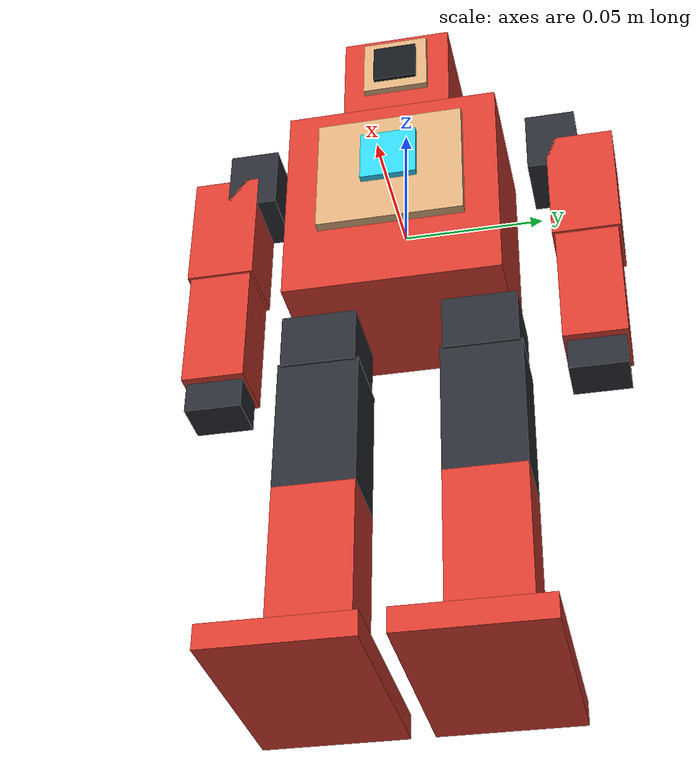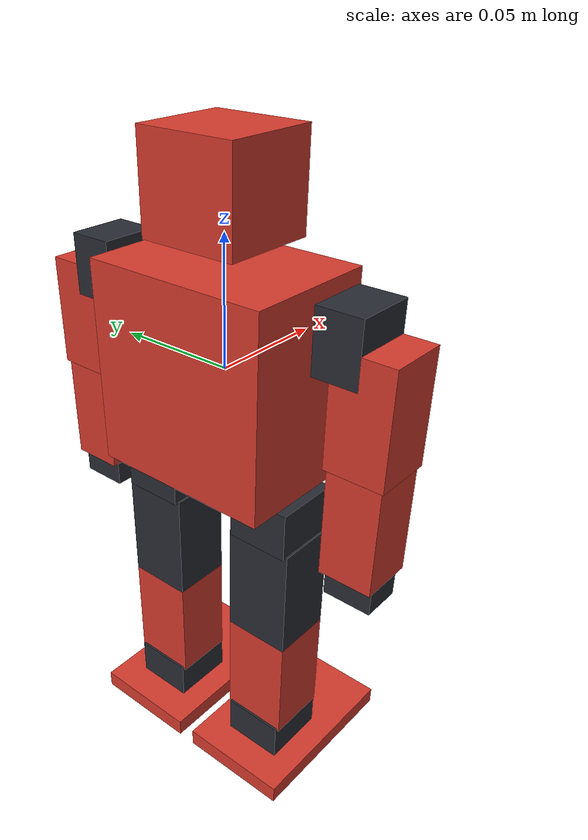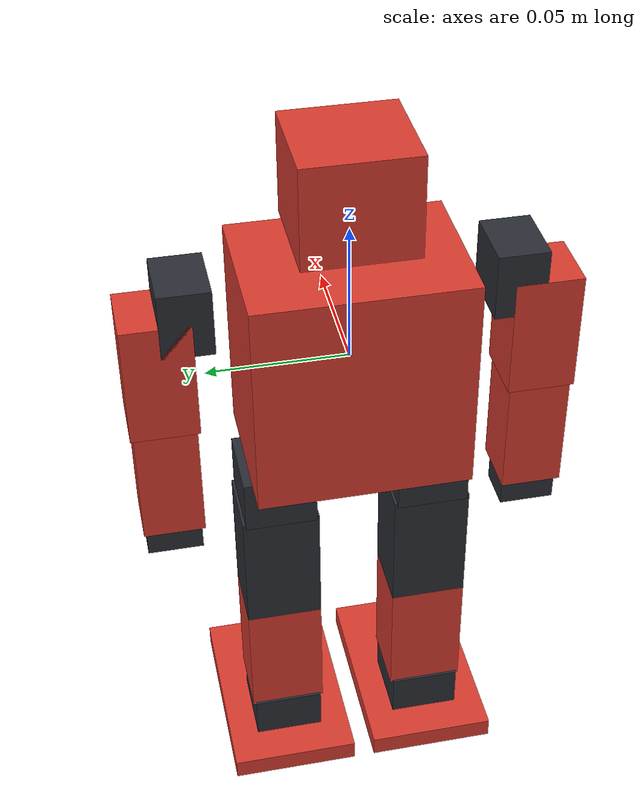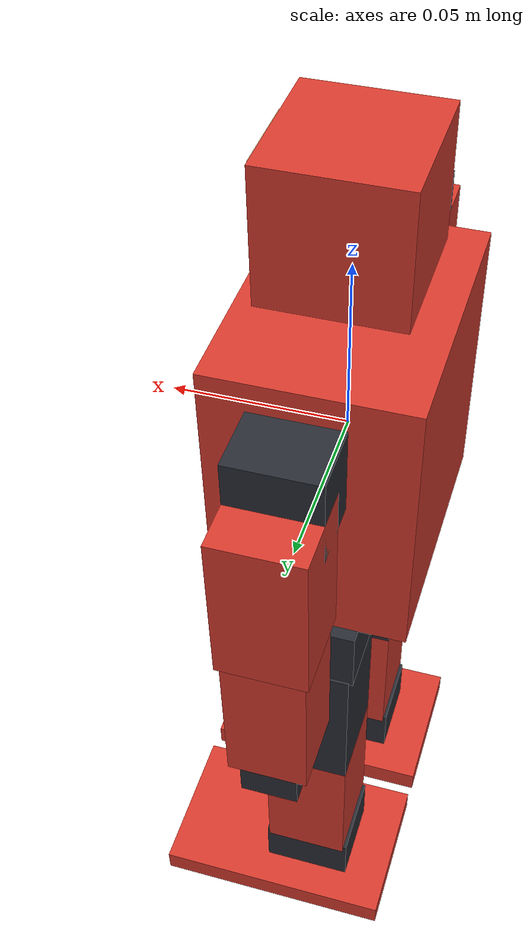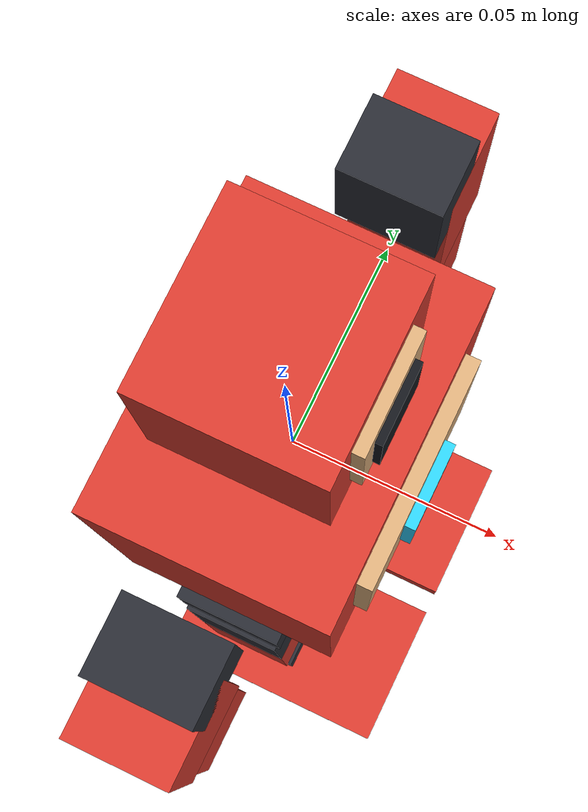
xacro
<?xml version="1.0" encoding="utf-8"?>
<!-- |    RoboHero 17-DOF Humanoid Robot XACRO Model                                   | -->
<!-- |    Copyright (C) 2026, Charles Chiou                                            | -->
<robot name="robohero" xmlns:xacro="http://www.ros.org/wiki/xacro">

  <!-- ==================== Parameters & Properties ==================== -->
  <xacro:property name="PI" value="3.1415926535897931"/>
  <xacro:property name="SERVO_MAX_VEL" value="3.14159"/>
  <xacro:property name="SERVO_MAX_EFFORT" value="1.5"/>

  <!-- ==================== Macro: Transmission ==================== -->
  <xacro:macro name="rh_transmission" params="joint_name channel">
    <transmission name="${joint_name}_tran">
      <type>transmission_interface/SimpleTransmission</type>
      <joint name="${joint_name}">
        <hardwareInterface>hardware_interface/PositionJointInterface</hardwareInterface>
      </joint>
      <actuator name="servo_${channel}">
        <hardwareInterface>hardware_interface/PositionJointInterface</hardwareInterface>
        <mechanicalReduction>1</mechanicalReduction>
      </actuator>
    </transmission>
  </xacro:macro>

  <!-- Include Core URDF Definition -->
  <xacro:include filename="$(find robohero)/model/robohero.urdf"/>

  <!-- ==================== Hardware Transmissions ==================== -->
  <!-- Head -->
  <xacro:rh_transmission joint_name="head_yaw_joint" channel="16"/>

  <!-- Left Arm -->
  <xacro:rh_transmission joint_name="left_shoulder_pitch_joint" channel="5"/>
  <xacro:rh_transmission joint_name="left_shoulder_roll_joint" channel="6"/>
  <xacro:rh_transmission joint_name="left_elbow_joint" channel="7"/>

  <!-- Right Arm -->
  <xacro:rh_transmission joint_name="right_shoulder_pitch_joint" channel="10"/>
  <xacro:rh_transmission joint_name="right_shoulder_roll_joint" channel="9"/>
  <xacro:rh_transmission joint_name="right_elbow_joint" channel="8"/>

  <!-- Left Leg -->
  <xacro:rh_transmission joint_name="left_hip_roll_joint" channel="4"/>
  <xacro:rh_transmission joint_name="left_hip_pitch_joint" channel="3"/>
  <xacro:rh_transmission joint_name="left_knee_pitch_joint" channel="2"/>
  <xacro:rh_transmission joint_name="left_ankle_pitch_joint" channel="1"/>
  <xacro:rh_transmission joint_name="left_ankle_roll_joint" channel="0"/>

  <!-- Right Leg -->
  <xacro:rh_transmission joint_name="right_hip_roll_joint" channel="11"/>
  <xacro:rh_transmission joint_name="right_hip_pitch_joint" channel="12"/>
  <xacro:rh_transmission joint_name="right_knee_pitch_joint" channel="13"/>
  <xacro:rh_transmission joint_name="right_ankle_pitch_joint" channel="14"/>
  <xacro:rh_transmission joint_name="right_ankle_roll_joint" channel="15"/>

</robot>

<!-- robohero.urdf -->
<!-- |    RoboHero 17-DOF Humanoid Robot URDF                                          | -->
<!-- |    Copyright (C) 2026, Charles Chiou                                            | -->
<robot name="robohero">

  <!-- ==================== Materials ==================== -->
  <material name="armor_red">
    <color rgba="0.84 0.23 0.18 1.0"/>
  </material>

  <material name="chest_gold">
    <color rgba="0.86 0.68 0.48 1.0"/>
  </material>

  <material name="servo_black">
    <color rgba="0.16 0.17 0.20 1.0"/>
  </material>

  <material name="reactor_cyan">
    <color rgba="0.18 0.82 1.0 1.0"/>
  </material>

  <material name="lens_dark">
    <color rgba="0.08 0.09 0.11 0.95"/>
  </material>

  <material name="metal_gray">
    <color rgba="0.35 0.37 0.40 1.0"/>
  </material>

  <!-- ==================== Base / Torso Link ==================== -->
  <link name="base_link">
    <inertial>
      <origin xyz="0 0 0" rpy="0 0 0"/>
      <mass value="0.160"/>
      <inertia ixx="0.00018" ixy="0.0" ixz="0.0" iyy="0.00015" iyz="0.0" izz="0.00012"/>
    </inertial>
    <visual>
      <origin xyz="0 0 0" rpy="0 0 0"/>
      <geometry>
        <box size="0.055 0.076 0.080"/>
      </geometry>
      <material name="armor_red"/>
    </visual>
    <!-- Gold Chest Armor Plate -->
    <visual>
      <origin xyz="0.029 0 0.008" rpy="0 0 0"/>
      <geometry>
        <box size="0.004 0.052 0.046"/>
      </geometry>
      <material name="chest_gold"/>
    </visual>
    <!-- Arc Reactor Core -->
    <visual>
      <origin xyz="0.032 0 0.012" rpy="0 0 0"/>
      <geometry>
        <box size="0.003 0.020 0.020"/>
      </geometry>
      <material name="reactor_cyan"/>
    </visual>
    <collision>
      <origin xyz="0 0 0" rpy="0 0 0"/>
      <geometry>
        <box size="0.055 0.076 0.080"/>
      </geometry>
    </collision>
  </link>

  <!-- ==================== Head (Channel 16) ==================== -->
  <joint name="head_yaw_joint" type="revolute">
    <origin xyz="0 0 0.046" rpy="0 0 0"/>
    <parent link="base_link"/>
    <child link="head_link"/>
    <axis xyz="0 0 1"/>
    <limit lower="-0.9756" upper="0.9233" effort="1.2" velocity="3.14"/>
  </joint>

  <link name="head_link">
    <inertial>
      <origin xyz="0 0 0.020" rpy="0 0 0"/>
      <mass value="0.040"/>
      <inertia ixx="0.00002" ixy="0.0" ixz="0.0" iyy="0.00002" iyz="0.0" izz="0.00002"/>
    </inertial>
    <!-- Red Helmet Dome -->
    <visual>
      <origin xyz="0 0 0.020" rpy="0 0 0"/>
      <geometry>
        <box size="0.038 0.040 0.036"/>
      </geometry>
      <material name="armor_red"/>
    </visual>
    <!-- Gold Eye Bezel -->
    <visual>
      <origin xyz="0.020 0 0.022" rpy="0 0 0"/>
      <geometry>
        <box size="0.003 0.024 0.024"/>
      </geometry>
      <material name="chest_gold"/>
    </visual>
    <!-- Dark Eye Lens -->
    <visual>
      <origin xyz="0.022 0 0.022" rpy="0 0 0"/>
      <geometry>
        <box size="0.002 0.016 0.016"/>
      </geometry>
      <material name="lens_dark"/>
    </visual>
    <collision>
      <origin xyz="0 0 0.020" rpy="0 0 0"/>
      <geometry>
        <box size="0.038 0.040 0.036"/>
      </geometry>
    </collision>
  </link>

  <!-- ==================== Left Arm (Channels 5, 6, 7) ==================== -->
  <!-- Left Shoulder Pitch (Channel 5) -->
  <joint name="left_shoulder_pitch_joint" type="revolute">
    <origin xyz="0 0.048 0.028" rpy="0 0 0"/>
    <parent link="base_link"/>
    <child link="left_shoulder_pitch_link"/>
    <axis xyz="0 1 0"/>
    <limit lower="-1.8117" upper="1.3055" effort="1.2" velocity="3.14"/>
  </joint>

  <link name="left_shoulder_pitch_link">
    <inertial>
      <origin xyz="0 0.008 0" rpy="0 0 0"/>
      <mass value="0.015"/>
      <inertia ixx="0.000005" ixy="0.0" ixz="0.0" iyy="0.000005" iyz="0.0" izz="0.000005"/>
    </inertial>
    <visual>
      <origin xyz="0 0.008 0" rpy="0 0 0"/>
      <geometry>
        <box size="0.024 0.018 0.024"/>
      </geometry>
      <material name="servo_black"/>
    </visual>
    <collision>
      <origin xyz="0 0.008 0" rpy="0 0 0"/>
      <geometry>
        <box size="0.024 0.018 0.024"/>
      </geometry>
    </collision>
  </link>

  <!-- Left Shoulder Roll (Channel 6) -->
  <joint name="left_shoulder_roll_joint" type="revolute">
    <origin xyz="0 0.018 0" rpy="0 0 0"/>
    <parent link="left_shoulder_pitch_link"/>
    <child link="left_upper_arm_link"/>
    <axis xyz="1 0 0"/>
    <limit lower="0.0000" upper="4.7298" effort="1.2" velocity="3.14"/>
  </joint>

  <link name="left_upper_arm_link">
    <inertial>
      <origin xyz="0 0 -0.022" rpy="0 0 0"/>
      <mass value="0.025"/>
      <inertia ixx="0.000010" ixy="0.0" ixz="0.0" iyy="0.000010" iyz="0.0" izz="0.000004"/>
    </inertial>
    <visual>
      <origin xyz="0 0 -0.022" rpy="0 0 0"/>
      <geometry>
        <box size="0.024 0.024 0.044"/>
      </geometry>
      <material name="armor_red"/>
    </visual>
    <collision>
      <origin xyz="0 0 -0.022" rpy="0 0 0"/>
      <geometry>
        <box size="0.024 0.024 0.044"/>
      </geometry>
    </collision>
  </link>

  <!-- Left Elbow (Channel 7) -->
  <joint name="left_elbow_joint" type="revolute">
    <origin xyz="0 0 -0.044" rpy="0 0 0"/>
    <parent link="left_upper_arm_link"/>
    <child link="left_forearm_link"/>
    <axis xyz="1 0 0"/>
    <limit lower="-1.3090" upper="1.4835" effort="1.2" velocity="3.14"/>
  </joint>

  <link name="left_forearm_link">
    <inertial>
      <origin xyz="0 0 -0.024" rpy="0 0 0"/>
      <mass value="0.022"/>
      <inertia ixx="0.000008" ixy="0.0" ixz="0.0" iyy="0.000008" iyz="0.0" izz="0.000003"/>
    </inertial>
    <visual>
      <origin xyz="0 0 -0.022" rpy="0 0 0"/>
      <geometry>
        <box size="0.022 0.022 0.044"/>
      </geometry>
      <material name="armor_red"/>
    </visual>
    <!-- Left Hand -->
    <visual>
      <origin xyz="0 0 -0.048" rpy="0 0 0"/>
      <geometry>
        <box size="0.016 0.020 0.014"/>
      </geometry>
      <material name="servo_black"/>
    </visual>
    <collision>
      <origin xyz="0 0 -0.026" rpy="0 0 0"/>
      <geometry>
        <box size="0.022 0.022 0.052"/>
      </geometry>
    </collision>
  </link>

  <!-- ==================== Right Arm (Channels 10, 9, 8) ==================== -->
  <!-- Right Shoulder Pitch (Channel 10) -->
  <joint name="right_shoulder_pitch_joint" type="revolute">
    <origin xyz="0 -0.048 0.028" rpy="0 0 0"/>
    <parent link="base_link"/>
    <child link="right_shoulder_pitch_link"/>
    <axis xyz="0 1 0"/>
    <limit lower="-2.4906" upper="2.0054" effort="1.2" velocity="3.14"/>
  </joint>

  <link name="right_shoulder_pitch_link">
    <inertial>
      <origin xyz="0 -0.008 0" rpy="0 0 0"/>
      <mass value="0.015"/>
      <inertia ixx="0.000005" ixy="0.0" ixz="0.0" iyy="0.000005" iyz="0.0" izz="0.000005"/>
    </inertial>
    <visual>
      <origin xyz="0 -0.008 0" rpy="0 0 0"/>
      <geometry>
        <box size="0.024 0.018 0.024"/>
      </geometry>
      <material name="servo_black"/>
    </visual>
    <collision>
      <origin xyz="0 -0.008 0" rpy="0 0 0"/>
      <geometry>
        <box size="0.024 0.018 0.024"/>
      </geometry>
    </collision>
  </link>

  <!-- Right Shoulder Roll (Channel 9) -->
  <joint name="right_shoulder_roll_joint" type="revolute">
    <origin xyz="0 -0.018 0" rpy="0 0 0"/>
    <parent link="right_shoulder_pitch_link"/>
    <child link="right_upper_arm_link"/>
    <axis xyz="1 0 0"/>
    <limit lower="-4.3284" upper="0.0000" effort="1.2" velocity="3.14"/>
  </joint>

  <link name="right_upper_arm_link">
    <inertial>
      <origin xyz="0 0 -0.022" rpy="0 0 0"/>
      <mass value="0.025"/>
      <inertia ixx="0.000010" ixy="0.0" ixz="0.0" iyy="0.000010" iyz="0.0" izz="0.000004"/>
    </inertial>
    <visual>
      <origin xyz="0 0 -0.022" rpy="0 0 0"/>
      <geometry>
        <box size="0.024 0.024 0.044"/>
      </geometry>
      <material name="armor_red"/>
    </visual>
    <collision>
      <origin xyz="0 0 -0.022" rpy="0 0 0"/>
      <geometry>
        <box size="0.024 0.024 0.044"/>
      </geometry>
    </collision>
  </link>

  <!-- Right Elbow (Channel 8) -->
  <joint name="right_elbow_joint" type="revolute">
    <origin xyz="0 0 -0.044" rpy="0 0 0"/>
    <parent link="right_upper_arm_link"/>
    <child link="right_forearm_link"/>
    <axis xyz="1 0 0"/>
    <limit lower="-1.4835" upper="0.9599" effort="1.2" velocity="3.14"/>
  </joint>

  <link name="right_forearm_link">
    <inertial>
      <origin xyz="0 0 -0.024" rpy="0 0 0"/>
      <mass value="0.022"/>
      <inertia ixx="0.000008" ixy="0.0" ixz="0.0" iyy="0.000008" iyz="0.0" izz="0.000003"/>
    </inertial>
    <visual>
      <origin xyz="0 0 -0.022" rpy="0 0 0"/>
      <geometry>
        <box size="0.022 0.022 0.044"/>
      </geometry>
      <material name="armor_red"/>
    </visual>
    <!-- Right Hand -->
    <visual>
      <origin xyz="0 0 -0.048" rpy="0 0 0"/>
      <geometry>
        <box size="0.016 0.020 0.014"/>
      </geometry>
      <material name="servo_black"/>
    </visual>
    <collision>
      <origin xyz="0 0 -0.026" rpy="0 0 0"/>
      <geometry>
        <box size="0.022 0.022 0.052"/>
      </geometry>
    </collision>
  </link>

  <!-- ==================== Left Leg (Channels 4, 3, 2, 1, 0) ==================== -->
  <!-- Left Hip Roll (Channel 4) -->
  <joint name="left_hip_roll_joint" type="revolute">
    <origin xyz="0 0.028 -0.042" rpy="0 0 0"/>
    <parent link="base_link"/>
    <child link="left_hip_roll_link"/>
    <axis xyz="1 0 0"/>
    <limit lower="-0.3491" upper="1.6057" effort="1.5" velocity="3.14"/>
  </joint>

  <link name="left_hip_roll_link">
    <inertial>
      <origin xyz="0 0 -0.009" rpy="0 0 0"/>
      <mass value="0.018"/>
      <inertia ixx="0.000006" ixy="0.0" ixz="0.0" iyy="0.000006" iyz="0.0" izz="0.000006"/>
    </inertial>
    <visual>
      <origin xyz="0 0 -0.009" rpy="0 0 0"/>
      <geometry>
        <box size="0.028 0.026 0.020"/>
      </geometry>
      <material name="servo_black"/>
    </visual>
    <collision>
      <origin xyz="0 0 -0.009" rpy="0 0 0"/>
      <geometry>
        <box size="0.028 0.026 0.020"/>
      </geometry>
    </collision>
  </link>

  <!-- Left Hip Pitch (Channel 3) -->
  <joint name="left_hip_pitch_joint" type="revolute">
    <origin xyz="0 0 -0.018" rpy="0 0 0"/>
    <parent link="left_hip_roll_link"/>
    <child link="left_thigh_link"/>
    <axis xyz="0 1 0"/>
    <limit lower="-0.6981" upper="1.5708" effort="1.5" velocity="3.14"/>
  </joint>

  <link name="left_thigh_link">
    <inertial>
      <origin xyz="0 0 -0.024" rpy="0 0 0"/>
      <mass value="0.035"/>
      <inertia ixx="0.000015" ixy="0.0" ixz="0.0" iyy="0.000015" iyz="0.0" izz="0.000005"/>
    </inertial>
    <visual>
      <origin xyz="0 0 -0.024" rpy="0 0 0"/>
      <geometry>
        <box size="0.026 0.028 0.048"/>
      </geometry>
      <material name="servo_black"/>
    </visual>
    <collision>
      <origin xyz="0 0 -0.024" rpy="0 0 0"/>
      <geometry>
        <box size="0.026 0.028 0.048"/>
      </geometry>
    </collision>
  </link>

  <!-- Left Knee Pitch (Channel 2) -->
  <joint name="left_knee_pitch_joint" type="revolute">
    <origin xyz="0 0 -0.048" rpy="0 0 0"/>
    <parent link="left_thigh_link"/>
    <child link="left_shin_link"/>
    <axis xyz="0 1 0"/>
    <limit lower="-0.6981" upper="1.5708" effort="1.5" velocity="3.14"/>
  </joint>

  <link name="left_shin_link">
    <inertial>
      <origin xyz="0 0 -0.024" rpy="0 0 0"/>
      <mass value="0.035"/>
      <inertia ixx="0.000015" ixy="0.0" ixz="0.0" iyy="0.000015" iyz="0.0" izz="0.000005"/>
    </inertial>
    <visual>
      <origin xyz="0 0 -0.024" rpy="0 0 0"/>
      <geometry>
        <box size="0.026 0.028 0.048"/>
      </geometry>
      <material name="armor_red"/>
    </visual>
    <collision>
      <origin xyz="0 0 -0.024" rpy="0 0 0"/>
      <geometry>
        <box size="0.026 0.028 0.048"/>
      </geometry>
    </collision>
  </link>

  <!-- Left Ankle Pitch (Channel 1) -->
  <joint name="left_ankle_pitch_joint" type="revolute">
    <origin xyz="0 0 -0.048" rpy="0 0 0"/>
    <parent link="left_shin_link"/>
    <child link="left_ankle_pitch_link"/>
    <axis xyz="0 1 0"/>
    <limit lower="-0.7854" upper="1.5708" effort="1.5" velocity="3.14"/>
  </joint>

  <link name="left_ankle_pitch_link">
    <inertial>
      <origin xyz="0 0 -0.008" rpy="0 0 0"/>
      <mass value="0.015"/>
      <inertia ixx="0.000005" ixy="0.0" ixz="0.0" iyy="0.000005" iyz="0.0" izz="0.000005"/>
    </inertial>
    <visual>
      <origin xyz="0 0 -0.008" rpy="0 0 0"/>
      <geometry>
        <box size="0.028 0.026 0.018"/>
      </geometry>
      <material name="servo_black"/>
    </visual>
    <collision>
      <origin xyz="0 0 -0.008" rpy="0 0 0"/>
      <geometry>
        <box size="0.028 0.026 0.018"/>
      </geometry>
    </collision>
  </link>

  <!-- Left Ankle Roll (Channel 0) -->
  <joint name="left_ankle_roll_joint" type="revolute">
    <origin xyz="0 0 -0.016" rpy="0 0 0"/>
    <parent link="left_ankle_pitch_link"/>
    <child link="left_foot_link"/>
    <axis xyz="1 0 0"/>
    <limit lower="-0.4363" upper="1.3090" effort="1.5" velocity="3.14"/>
  </joint>

  <link name="left_foot_link">
    <inertial>
      <origin xyz="0.010 0 -0.004" rpy="0 0 0"/>
      <mass value="0.035"/>
      <inertia ixx="0.000010" ixy="0.0" ixz="0.0" iyy="0.000020" iyz="0.0" izz="0.000025"/>
    </inertial>
    <visual>
      <origin xyz="0.010 0 -0.004" rpy="0 0 0"/>
      <geometry>
        <box size="0.076 0.048 0.008"/>
      </geometry>
      <material name="armor_red"/>
    </visual>
    <collision>
      <origin xyz="0.010 0 -0.004" rpy="0 0 0"/>
      <geometry>
        <box size="0.076 0.048 0.008"/>
      </geometry>
    </collision>
  </link>

  <!-- ==================== Right Leg (Channels 11, 12, 13, 14, 15) ==================== -->
  <!-- Right Hip Roll (Channel 11) -->
  <joint name="right_hip_roll_joint" type="revolute">
    <origin xyz="0 -0.028 -0.042" rpy="0 0 0"/>
    <parent link="base_link"/>
    <child link="right_hip_roll_link"/>
    <axis xyz="1 0 0"/>
    <limit lower="-1.7453" upper="0.3491" effort="1.5" velocity="3.14"/>
  </joint>

  <link name="right_hip_roll_link">
    <inertial>
      <origin xyz="0 0 -0.009" rpy="0 0 0"/>
      <mass value="0.018"/>
      <inertia ixx="0.000006" ixy="0.0" ixz="0.0" iyy="0.000006" iyz="0.0" izz="0.000006"/>
    </inertial>
    <visual>
      <origin xyz="0 0 -0.009" rpy="0 0 0"/>
      <geometry>
        <box size="0.028 0.026 0.020"/>
      </geometry>
      <material name="servo_black"/>
    </visual>
    <collision>
      <origin xyz="0 0 -0.009" rpy="0 0 0"/>
      <geometry>
        <box size="0.028 0.026 0.020"/>
      </geometry>
    </collision>
  </link>

  <!-- Right Hip Pitch (Channel 12) -->
  <joint name="right_hip_pitch_joint" type="revolute">
    <origin xyz="0 0 -0.018" rpy="0 0 0"/>
    <parent link="right_hip_roll_link"/>
    <child link="right_thigh_link"/>
    <axis xyz="0 1 0"/>
    <limit lower="-0.6981" upper="1.5708" effort="1.5" velocity="3.14"/>
  </joint>

  <link name="right_thigh_link">
    <inertial>
      <origin xyz="0 0 -0.024" rpy="0 0 0"/>
      <mass value="0.035"/>
      <inertia ixx="0.000015" ixy="0.0" ixz="0.0" iyy="0.000015" iyz="0.0" izz="0.000005"/>
    </inertial>
    <visual>
      <origin xyz="0 0 -0.024" rpy="0 0 0"/>
      <geometry>
        <box size="0.026 0.028 0.048"/>
      </geometry>
      <material name="servo_black"/>
    </visual>
    <collision>
      <origin xyz="0 0 -0.024" rpy="0 0 0"/>
      <geometry>
        <box size="0.026 0.028 0.048"/>
      </geometry>
    </collision>
  </link>

  <!-- Right Knee Pitch (Channel 13) -->
  <joint name="right_knee_pitch_joint" type="revolute">
    <origin xyz="0 0 -0.048" rpy="0 0 0"/>
    <parent link="right_thigh_link"/>
    <child link="right_shin_link"/>
    <axis xyz="0 1 0"/>
    <limit lower="-0.6981" upper="1.5708" effort="1.5" velocity="3.14"/>
  </joint>

  <link name="right_shin_link">
    <inertial>
      <origin xyz="0 0 -0.024" rpy="0 0 0"/>
      <mass value="0.035"/>
      <inertia ixx="0.000015" ixy="0.0" ixz="0.0" iyy="0.000015" iyz="0.0" izz="0.000005"/>
    </inertial>
    <visual>
      <origin xyz="0 0 -0.024" rpy="0 0 0"/>
      <geometry>
        <box size="0.026 0.028 0.048"/>
      </geometry>
      <material name="armor_red"/>
    </visual>
    <collision>
      <origin xyz="0 0 -0.024" rpy="0 0 0"/>
      <geometry>
        <box size="0.026 0.028 0.048"/>
      </geometry>
    </collision>
  </link>

  <!-- Right Ankle Pitch (Channel 14) -->
  <joint name="right_ankle_pitch_joint" type="revolute">
    <origin xyz="0 0 -0.048" rpy="0 0 0"/>
    <parent link="right_shin_link"/>
    <child link="right_ankle_pitch_link"/>
    <axis xyz="0 1 0"/>
    <limit lower="-0.8727" upper="1.5708" effort="1.5" velocity="3.14"/>
  </joint>

  <link name="right_ankle_pitch_link">
    <inertial>
      <origin xyz="0 0 -0.008" rpy="0 0 0"/>
      <mass value="0.015"/>
      <inertia ixx="0.000005" ixy="0.0" ixz="0.0" iyy="0.000005" iyz="0.0" izz="0.000005"/>
    </inertial>
    <visual>
      <origin xyz="0 0 -0.008" rpy="0 0 0"/>
      <geometry>
        <box size="0.028 0.026 0.018"/>
      </geometry>
      <material name="servo_black"/>
    </visual>
    <collision>
      <origin xyz="0 0 -0.008" rpy="0 0 0"/>
      <geometry>
        <box size="0.028 0.026 0.018"/>
      </geometry>
    </collision>
  </link>

  <!-- Right Ankle Roll (Channel 15) -->
  <joint name="right_ankle_roll_joint" type="revolute">
    <origin xyz="0 0 -0.016" rpy="0 0 0"/>
    <parent link="right_ankle_pitch_link"/>
    <child link="right_foot_link"/>
    <axis xyz="1 0 0"/>
    <limit lower="-0.4363" upper="1.2217" effort="1.5" velocity="3.14"/>
  </joint>

  <link name="right_foot_link">
    <inertial>
      <origin xyz="0.010 0 -0.004" rpy="0 0 0"/>
      <mass value="0.035"/>
      <inertia ixx="0.000010" ixy="0.0" ixz="0.0" iyy="0.000020" iyz="0.0" izz="0.000025"/>
    </inertial>
    <visual>
      <origin xyz="0.010 0 -0.004" rpy="0 0 0"/>
      <geometry>
        <box size="0.076 0.048 0.008"/>
      </geometry>
      <material name="armor_red"/>
    </visual>
    <collision>
      <origin xyz="0.010 0 -0.004" rpy="0 0 0"/>
      <geometry>
        <box size="0.076 0.048 0.008"/>
      </geometry>
    </collision>
  </link>

</robot>
